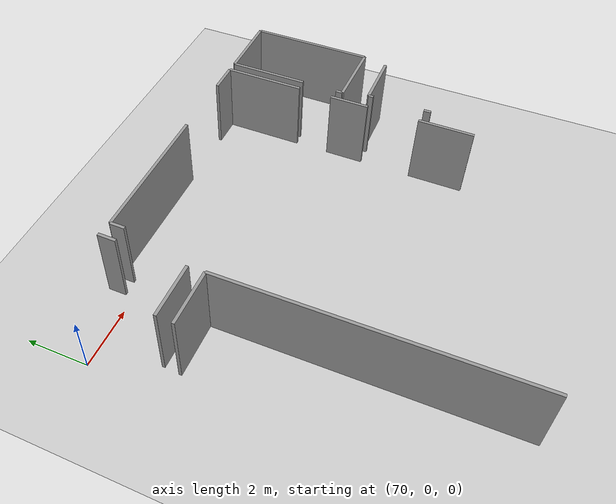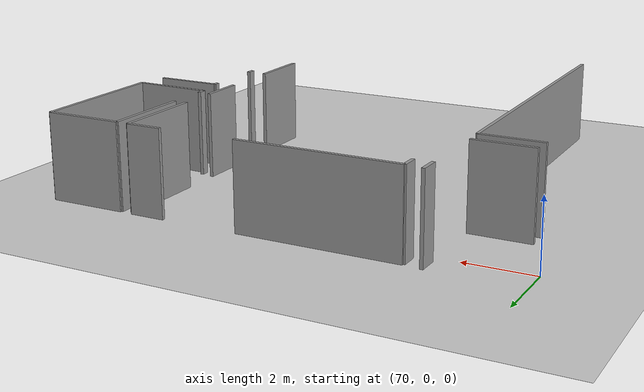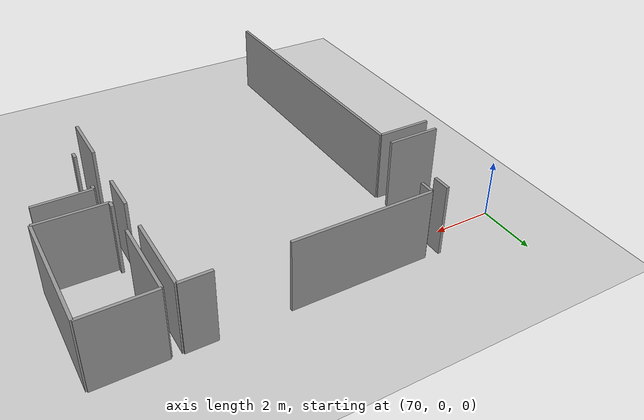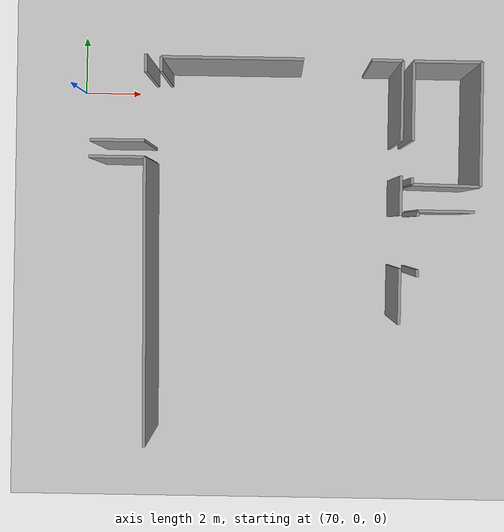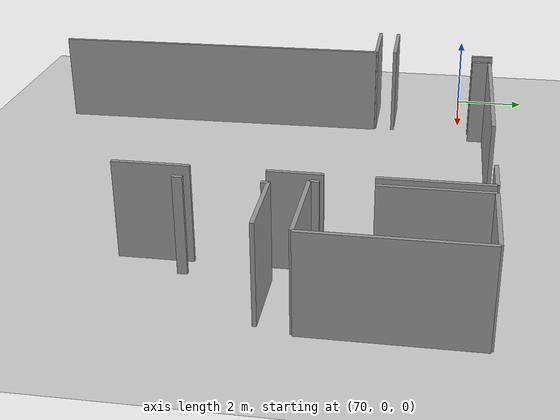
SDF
<sdf version="1.6">
 <world name="default">
  <model name="ground_plane">
   <static>1</static>
   <link name="link">
    <collision name="collision">
     <geometry><plane><normal>0 0 1</normal><size>100 100</size></plane></geometry>
     <surface><friction><ode><mu>100</mu><mu2>50</mu2></ode></friction></surface>
    </collision>
    <visual name="visual">
     <cast_shadows>0</cast_shadows>
     <geometry><plane><normal>0 0 1</normal><size>100 100</size></plane></geometry>
     <material>
      <script><uri>file://media/materials/scripts/gazebo.material</uri><name>Gazebo/Grey</name></script>
     </material>
    </visual>
   </link>
  </model>
  <model name="0510045907_A_40_1_105">
   <static>1</static>
   <link name="Wall_35">
    <collision name="Wall_35_Collision">
     <geometry><box><size>0.593327917132 0.1 2.5</size></box></geometry>
     <pose>0.296663958566 0 1.25 0 0 0</pose>
    </collision>
    <visual name="Wall_35_Visual">
     <pose>0.296663958566 0 1.25 0 0 0</pose>
     <geometry><box><size>0.593327917132 0.1 2.5</size></box></geometry>
     <material>
      <script><uri>file://media/materials/scripts/gazebo.material</uri><name>Gazebo/Grey</name></script>
      <ambient>1 1 1 1</ambient>
     </material>
    </visual>
    <pose>156.274245963 -11.358789479 0 0 0 -1.57079632679</pose>
   </link>
   <link name="Wall_36">
    <collision name="Wall_36_Collision">
     <geometry><box><size>1.80004062151 0.1 2.5</size></box></geometry>
     <pose>0.900020310755 0 1.25 0 0 0</pose>
    </collision>
    <visual name="Wall_36_Visual">
     <pose>0.900020310755 0 1.25 0 0 0</pose>
     <geometry><box><size>1.80004062151 0.1 2.5</size></box></geometry>
     <material>
      <script><uri>file://media/materials/scripts/gazebo.material</uri><name>Gazebo/Grey</name></script>
      <ambient>1 1 1 1</ambient>
     </material>
    </visual>
    <pose>156.274245963 -14.2241291764 0 0 0 3.14159265359</pose>
   </link>
   <link name="Wall_169">
    <collision name="Wall_169_Collision">
     <geometry><box><size>1.84396262821 0.1 2.5</size></box></geometry>
     <pose>0.921981314106 0 1.25 0 0 0</pose>
    </collision>
    <visual name="Wall_169_Visual">
     <pose>0.921981314106 0 1.25 0 0 0</pose>
     <geometry><box><size>1.84396262821 0.1 2.5</size></box></geometry>
     <material>
      <script><uri>file://media/materials/scripts/gazebo.material</uri><name>Gazebo/Grey</name></script>
      <ambient>1 1 1 1</ambient>
     </material>
    </visual>
    <pose>154.441200366 -14.7735350868 0 0 0 0.0</pose>
   </link>
   <link name="Wall_170">
    <collision name="Wall_170_Collision">
     <geometry><box><size>9.5659382817 0.1 2.5</size></box></geometry>
     <pose>4.78296914085 0 1.25 0 0 0</pose>
    </collision>
    <visual name="Wall_170_Visual">
     <pose>4.78296914085 0 1.25 0 0 0</pose>
     <geometry><box><size>9.5659382817 0.1 2.5</size></box></geometry>
     <material>
      <script><uri>file://media/materials/scripts/gazebo.material</uri><name>Gazebo/Grey</name></script>
      <ambient>1 1 1 1</ambient>
     </material>
    </visual>
    <pose>156.285162994 -14.7735350868 0 0 0 -1.55752570574</pose>
   </link>
   <link name="Wall_173">
    <collision name="Wall_173_Collision">
     <geometry><box><size>0.479841576115 0.1 2.5</size></box></geometry>
     <pose>0.239920788057 0 1.25 0 0 0</pose>
    </collision>
    <visual name="Wall_173_Visual">
     <pose>0.239920788057 0 1.25 0 0 0</pose>
     <geometry><box><size>0.479841576115 0.1 2.5</size></box></geometry>
     <material>
      <script><uri>file://media/materials/scripts/gazebo.material</uri><name>Gazebo/Grey</name></script>
      <ambient>1 1 1 1</ambient>
     </material>
    </visual>
    <pose>156.78506144 -11.9356149081 0 0 0 1.57079632679</pose>
   </link>
   <link name="Wall_174">
    <collision name="Wall_174_Collision">
     <geometry><box><size>4.70828678785 0.1 2.5</size></box></geometry>
     <pose>2.35414339393 0 1.25 0 0 0</pose>
    </collision>
    <visual name="Wall_174_Visual">
     <pose>2.35414339393 0 1.25 0 0 0</pose>
     <geometry><box><size>4.70828678785 0.1 2.5</size></box></geometry>
     <material>
      <script><uri>file://media/materials/scripts/gazebo.material</uri><name>Gazebo/Grey</name></script>
      <ambient>1 1 1 1</ambient>
     </material>
    </visual>
    <pose>156.78506144 -11.455773332 0 0 0 0.0</pose>
   </link>
   <link name="Wall_175">
    <collision name="Wall_175_Collision">
     <geometry><box><size>1.02239260689 0.1 2.5</size></box></geometry>
     <pose>0.511196303443 0 1.25 0 0 0</pose>
    </collision>
    <visual name="Wall_175_Visual">
     <pose>0.511196303443 0 1.25 0 0 0</pose>
     <geometry><box><size>1.02239260689 0.1 2.5</size></box></geometry>
     <material>
      <script><uri>file://media/materials/scripts/gazebo.material</uri><name>Gazebo/Grey</name></script>
      <ambient>1 1 1 1</ambient>
     </material>
    </visual>
    <pose>163.740225449 -11.455773332 0 0 0 0.0</pose>
   </link>
   <link name="Wall_176">
    <collision name="Wall_176_Collision">
     <geometry><box><size>2.6548695034 0.1 2.5</size></box></geometry>
     <pose>1.3274347517 0 1.25 0 0 0</pose>
    </collision>
    <visual name="Wall_176_Visual">
     <pose>1.3274347517 0 1.25 0 0 0</pose>
     <geometry><box><size>2.6548695034 0.1 2.5</size></box></geometry>
     <material>
      <script><uri>file://media/materials/scripts/gazebo.material</uri><name>Gazebo/Grey</name></script>
      <ambient>1 1 1 1</ambient>
     </material>
    </visual>
    <pose>164.762618056 -11.455773332 0 0 0 -1.57079632679</pose>
   </link>
   <link name="Wall_177">
    <collision name="Wall_177_Collision">
     <geometry><box><size>1.31131309028 0.1 2.5</size></box></geometry>
     <pose>0.655656545141 0 1.25 0 0 0</pose>
    </collision>
    <visual name="Wall_177_Visual">
     <pose>0.655656545141 0 1.25 0 0 0</pose>
     <geometry><box><size>1.31131309028 0.1 2.5</size></box></geometry>
     <material>
      <script><uri>file://media/materials/scripts/gazebo.material</uri><name>Gazebo/Grey</name></script>
      <ambient>1 1 1 1</ambient>
     </material>
    </visual>
    <pose>164.762618056 -15.2571849294 0 0 0 -1.57079632679</pose>
   </link>
   <link name="Wall_178">
    <collision name="Wall_178_Collision">
     <geometry><box><size>1.85157916117 0.1 2.5</size></box></geometry>
     <pose>0.925789580583 0 1.25 0 0 0</pose>
    </collision>
    <visual name="Wall_178_Visual">
     <pose>0.925789580583 0 1.25 0 0 0</pose>
     <geometry><box><size>1.85157916117 0.1 2.5</size></box></geometry>
     <material>
      <script><uri>file://media/materials/scripts/gazebo.material</uri><name>Gazebo/Grey</name></script>
      <ambient>1 1 1 1</ambient>
     </material>
    </visual>
    <pose>164.762618056 -18.3187772926 0 0 0 -1.57079632679</pose>
   </link>
   <link name="Wall_181">
    <collision name="Wall_181_Collision">
     <geometry><box><size>4.10505737788 0.1 2.5</size></box></geometry>
     <pose>2.05252868894 0 1.25 0 0 0</pose>
    </collision>
    <visual name="Wall_181_Visual">
     <pose>2.05252868894 0 1.25 0 0 0</pose>
     <geometry><box><size>4.10505737788 0.1 2.5</size></box></geometry>
     <material>
      <script><uri>file://media/materials/scripts/gazebo.material</uri><name>Gazebo/Grey</name></script>
      <ambient>1 1 1 1</ambient>
     </material>
    </visual>
    <pose>167.381943739 -15.5742865847 0 0 0 1.57079632679</pose>
   </link>
   <link name="Wall_182">
    <collision name="Wall_182_Collision">
     <geometry><box><size>2.24992383467 0.1 2.5</size></box></geometry>
     <pose>1.12496191734 0 1.25 0 0 0</pose>
    </collision>
    <visual name="Wall_182_Visual">
     <pose>1.12496191734 0 1.25 0 0 0</pose>
     <geometry><box><size>2.24992383467 0.1 2.5</size></box></geometry>
     <material>
      <script><uri>file://media/materials/scripts/gazebo.material</uri><name>Gazebo/Grey</name></script>
      <ambient>1 1 1 1</ambient>
     </material>
    </visual>
    <pose>167.381943739 -11.4692292069 0 0 0 3.14159265359</pose>
   </link>
   <link name="Wall_183">
    <collision name="Wall_183_Collision">
     <geometry><box><size>2.61881791409 0.1 2.5</size></box></geometry>
     <pose>1.30940895704 0 1.25 0 0 0</pose>
    </collision>
    <visual name="Wall_183_Visual">
     <pose>1.30940895704 0 1.25 0 0 0</pose>
     <geometry><box><size>2.61881791409 0.1 2.5</size></box></geometry>
     <material>
      <script><uri>file://media/materials/scripts/gazebo.material</uri><name>Gazebo/Grey</name></script>
      <ambient>1 1 1 1</ambient>
     </material>
    </visual>
    <pose>165.132019905 -11.4692292069 0 0 0 -1.57079632679</pose>
   </link>
   <link name="Wall_184">
    <collision name="Wall_184_Collision">
     <geometry><box><size>0.227226566467 0.1 2.5</size></box></geometry>
     <pose>0.113613283233 0 1.25 0 0 0</pose>
    </collision>
    <visual name="Wall_184_Visual">
     <pose>0.113613283233 0 1.25 0 0 0</pose>
     <geometry><box><size>0.227226566467 0.1 2.5</size></box></geometry>
     <material>
      <script><uri>file://media/materials/scripts/gazebo.material</uri><name>Gazebo/Grey</name></script>
      <ambient>1 1 1 1</ambient>
     </material>
    </visual>
    <pose>165.132019905 -15.3097390068 0 0 0 -1.57079632679</pose>
   </link>
   <link name="Wall_185">
    <collision name="Wall_185_Collision">
     <geometry><box><size>2.25023334784 0.1 2.5</size></box></geometry>
     <pose>1.12511667392 0 1.25 0 0 0</pose>
    </collision>
    <visual name="Wall_185_Visual">
     <pose>1.12511667392 0 1.25 0 0 0</pose>
     <geometry><box><size>2.25023334784 0.1 2.5</size></box></geometry>
     <material>
      <script><uri>file://media/materials/scripts/gazebo.material</uri><name>Gazebo/Grey</name></script>
      <ambient>1 1 1 1</ambient>
     </material>
    </visual>
    <pose>165.132019905 -15.5369655733 0 0 0 -0.0165861566039</pose>
   </link>
   <link name="Wall_187">
    <collision name="Wall_187_Collision">
     <geometry><box><size>1.86935107139 0.1 2.5</size></box></geometry>
     <pose>0.934675535696 0 1.25 0 0 0</pose>
    </collision>
    <visual name="Wall_187_Visual">
     <pose>0.934675535696 0 1.25 0 0 0</pose>
     <geometry><box><size>1.86935107139 0.1 2.5</size></box></geometry>
     <material>
      <script><uri>file://media/materials/scripts/gazebo.material</uri><name>Gazebo/Grey</name></script>
      <ambient>1 1 1 1</ambient>
     </material>
    </visual>
    <pose>167.205240175 -16.4118513253 0 0 0 3.14159265359</pose>
   </link>
   <link name="Wall_188">
    <collision name="Wall_188_Collision">
     <geometry><box><size>0.166040418402 0.1 2.5</size></box></geometry>
     <pose>0.0830202092008 0 1.25 0 0 0</pose>
    </collision>
    <visual name="Wall_188_Visual">
     <pose>0.0830202092008 0 1.25 0 0 0</pose>
     <geometry><box><size>0.166040418402 0.1 2.5</size></box></geometry>
     <material>
      <script><uri>file://media/materials/scripts/gazebo.material</uri><name>Gazebo/Grey</name></script>
      <ambient>1 1 1 1</ambient>
     </material>
    </visual>
    <pose>165.335889103 -16.4118513253 0 0 0 -1.57079632679</pose>
   </link>
   <link name="Wall_189">
    <collision name="Wall_189_Collision">
     <geometry><box><size>0.241444094648 0.1 2.5</size></box></geometry>
     <pose>0.120722047324 0 1.25 0 0 0</pose>
    </collision>
    <visual name="Wall_189_Visual">
     <pose>0.120722047324 0 1.25 0 0 0</pose>
     <geometry><box><size>0.241444094648 0.1 2.5</size></box></geometry>
     <material>
      <script><uri>file://media/materials/scripts/gazebo.material</uri><name>Gazebo/Grey</name></script>
      <ambient>1 1 1 1</ambient>
     </material>
    </visual>
    <pose>165.335889103 -18.3403574693 0 0 0 -1.57079632679</pose>
   </link>
   <pose>-83.65 12.2252056464 0 0 0 0</pose>
  </model>
 </world>
</sdf>
